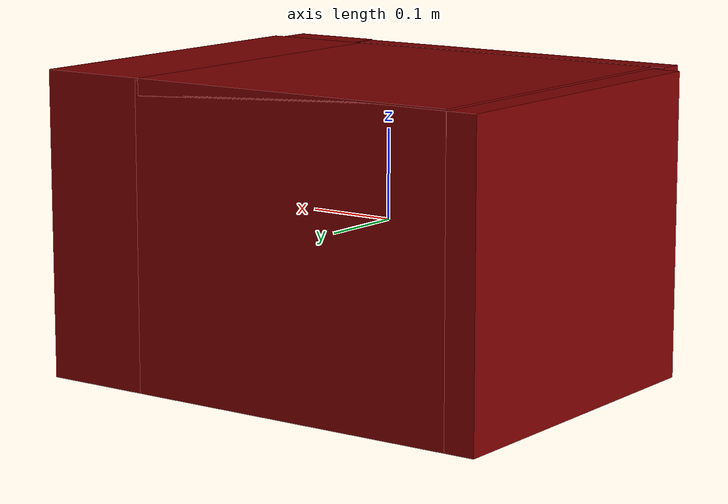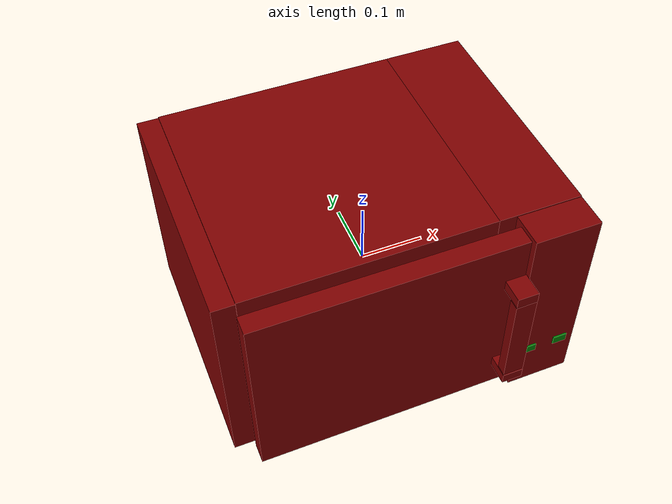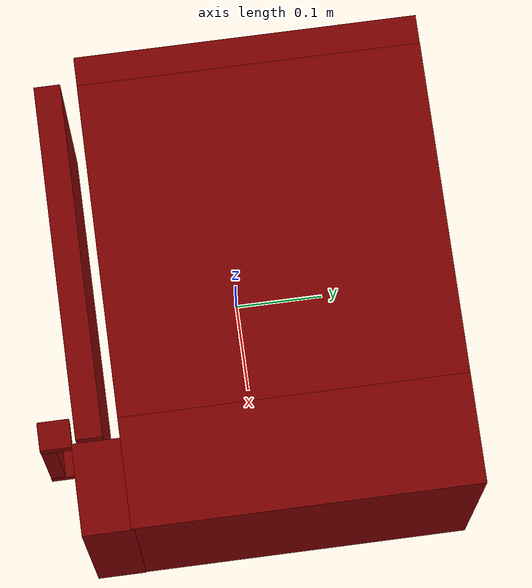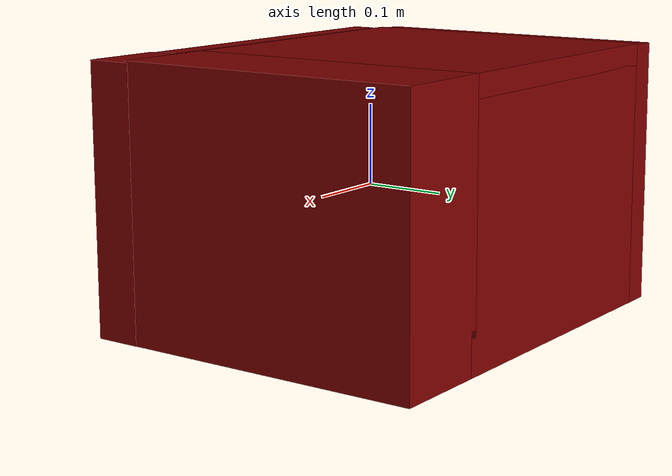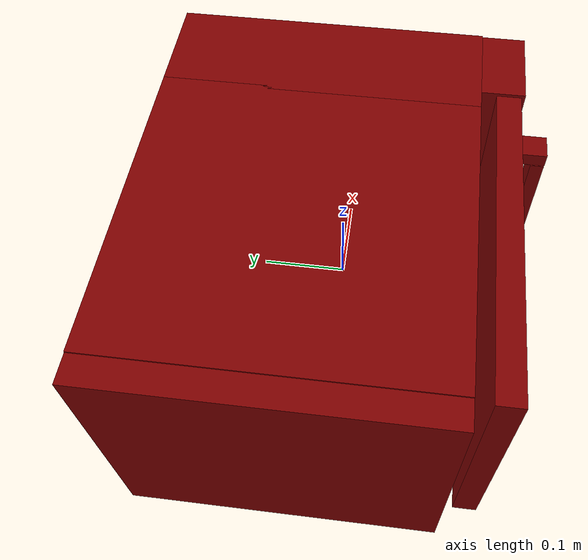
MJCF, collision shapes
<?xml version='1.0' encoding='UTF-8'?>
<mujoco model="model">
  <option timestep="0.002" gravity="0.0 0.0 -9.81"/>
  <compiler angle="radian"/>
  <asset>
    <mesh file="visuals/door.obj" name="door_vis"/>
    <mesh file="visuals/door_Clear.obj" name="door_Clear_vis"/>
    <mesh file="visuals/Body001.obj" name="Body001_vis"/>
    <mesh file="visuals/Disc001.obj" name="Disc001_vis"/>
    <texture file="visuals/T_BC001.png" name="Body001_material" type="2d"/>
    <material name="Body001_material" rgba="1 1 1 1.0" texture="Body001_material" shininess="0.141421377658844" specular="1"/>
    <texture file="visuals/T_BC001.png" name="door_material" type="2d"/>
    <material name="door_material" rgba="1 1 1 1.0" texture="door_material" shininess="0.141421377658844" specular="0.3103448502657381"/>
    <material name="door_Clear_material" rgba="0.02316936105489731 0.02316936105489731 0.02316936105489731 0.8449280261993408" shininess="0.5000000596046448" specular="0.3103448502657381"/>
    <texture file="visuals/T_BC001.png" name="Disc001_material" type="2d"/>
    <material name="Disc001_material" rgba="1 1 1 1.0" texture="Disc001_material" shininess="0.141421377658844" specular="1"/>
  </asset>
  <default>
    <default class="visual">
      <geom conaffinity="0" contype="0" group="1" type="mesh"/>
    </default>
    <default class="collision">
      <geom group="0" rgba="0.5 0 0 0.5"/>
    </default>
    <default class="spawn">
      <geom group="0" rgba="1 1 1 0.5" contype="0" conaffinity="0"/>
      <site group="0" rgba="1 1 1 0.5"/>
    </default>
    <default class="region">
      <geom group="1" conaffinity="0" contype="0" rgba="0 1 0 0"/>
    </default>
  </default>
  <worldbody>
    <body>
      <body name="object">
        <geom class="collision" type="cylinder" pos="-0.04119630 0.04799132 -0.12850755" size="0.1278975009918213 0.0013122123200446367" quat="1.0 0.0 0.0 0.0" name="tray" rgba="0 1 0 0.5"/>
        <geom class="collision" type="box" pos="0.24762885 -0.20603681 -0.08541018" size="0.011443791911005974 0.0012124379863962531 0.007463434711098671" quat="1.0 0.0 0.0 0.0" name="start_button" rgba="0.0 0.5 0 0.5"/>
        <geom class="collision" type="box" pos="0.19438921 -0.20603681 -0.08464897" size="0.010885173454880714 0.0011532516218721867 0.007099101785570383" quat="1.0 0.0 0.0 0.0" name="stop_button" rgba="0.0 0.5 0 0.5"/>
        <geom mesh="Body001_vis" type="mesh" solimp="0.998 0.998 0.001" solref="0.001 1" friction="0.95 0.3 0.1" class="visual" material="Body001_material"/>
        <geom class="collision" type="box" pos="-0.25433800 0.04590453 0.00000000" size="0.017835166305303574 0.19589221477508545 0.16746601462364197" quat="1.0 0.0 0.0 0.0"/>
        <geom class="collision" type="box" pos="0.20674443 0.04590453 0.00093967" size="0.06484981626272202 0.19589221477508545 0.1684056967496872" quat="1.0 0.0 0.0 0.0"/>
        <geom class="collision" type="box" pos="-0.04323009 0.22425996 0.00000000" size="0.19429098069667816 0.017536791041493416 0.16746601462364197" quat="1.0 0.0 0.0 0.0"/>
        <geom class="collision" type="box" pos="-0.04323009 0.03523160 -0.15263240" size="0.19429098069667816 0.18032829463481903 0.01643228344619274" quat="1.0 0.0 0.0 0.0"/>
        <geom class="collision" type="box" pos="-0.04561489 0.04590452 0.15545049" size="0.19266095757484436 0.19589221477508545 0.013894881121814251" quat="1.0 0.0 0.0 0.0"/>
        <geom class="collision" type="box" pos="0.22072010 -0.17517893 -0.00026789" size="0.0514531284570694 0.028888816013932228 0.16719812154769897" quat="1.0 0.0 0.0 0.0"/>
        <body name="door">
          <joint axis="0.0 0.0 1.0" pos="-0.24515142 -0.17644462 0.00808143" limited="true" name="microjoint" range="-1.5707963267948966 0.0" type="hinge" damping="1" frictionloss="1" armature=".01" stiffness="0.05"/>
          <geom mesh="door_vis" type="mesh" solimp="0.998 0.998 0.001" solref="0.001 1" friction="0.95 0.3 0.1" class="visual" material="door_material"/>
          <geom class="collision" type="box" pos="-0.05275993 -0.18409626 0.00585941" size="0.1582612842321396 0.00567729864269495 0.08158760517835617" quat="1.0 0.0 0.0 0.0"/>
          <geom class="collision" type="box" pos="-0.03895094 -0.18381381 0.00879696" size="0.20413893461227417 0.014991610310971737 0.15809066593647003" quat="1.0 0.0 0.0 0.0" name="door_main"/>
          <geom class="collision" type="box" pos="0.14489137 -0.22402239 0.09898843" size="0.016223782673478127 0.01821109838783741 0.008662233129143715" quat="1.0 0.0 0.0 0.0"/>
          <geom class="collision" type="box" pos="0.14489137 -0.22402239 -0.08201784" size="0.016223782673478127 0.01821109838783741 0.008662233129143715" quat="1.0 0.0 0.0 0.0"/>
          <geom class="collision" type="box" pos="0.14489137 -0.23338179 0.00892475" size="0.016223782673478127 0.008541478775441647 0.0799010619521141" quat="1.0 0.0 0.0 0.0" name="door_handle_main"/>
          <body name="door_Clear">
            <geom mesh="door_Clear_vis" type="mesh" solimp="0.998 0.998 0.001" solref="0.001 1" friction="0.95 0.3 0.1" class="visual" material="door_Clear_material"/>
            <geom class="collision" type="box" pos="-0.05275993 -0.18409626 0.00585941" size="0.1582612842321396 0.00567729864269495 0.08158760517835617" quat="1.0 0.0 0.0 0.0"/>
          </body>
        </body>
        <body name="Disc001">
          <joint axis="0.0 0.0 1.0" pos="-0.04064451 0.04721468 -0.10523672" limited="false" name="Disc001_joint" range="0 360" type="hinge" damping="1" frictionloss="1" armature=".01" stiffness="0.05"/>
          <geom mesh="Disc001_vis" type="mesh" solimp="0.998 0.998 0.001" solref="0.001 1" friction="0.95 0.3 0.1" class="visual" material="Disc001_material"/>
          <geom class="collision" type="cylinder" pos="-0.04119630 0.04799132 -0.13248606" size="0.1278975009918213 0.002465267898514867" quat="1.0 0.0 0.0 0.0"/>
        </body>
        <geom class="region" name="reg_int" type="box" pos="-0.047168014999999994 0.02895777999999999 0.004537035000000009" size="0.18503604499999998 0.17509853 0.13256573500000002"/>
        <geom class="region" name="reg_main" type="box" pos="2.4999999986841104e-08 0.01881513 2.000000000335067e-08" size="0.27317319500000004 0.22398162 0.17034535"/>
      <geom class="region" name="reg_tray" type="cylinder" pos="-0.0411963 0.04799132 0.0049537161600223395" size="0.1278975009918213 0.13114905383997771"/></body>
    </body>
  </worldbody>
  <actuator>
    <motor name="microjoint_actuator" joint="microjoint" gear="10"/>
    <motor name="Disc001_joint_actuator" joint="Disc001_joint" gear="10"/>
  </actuator>
</mujoco>
